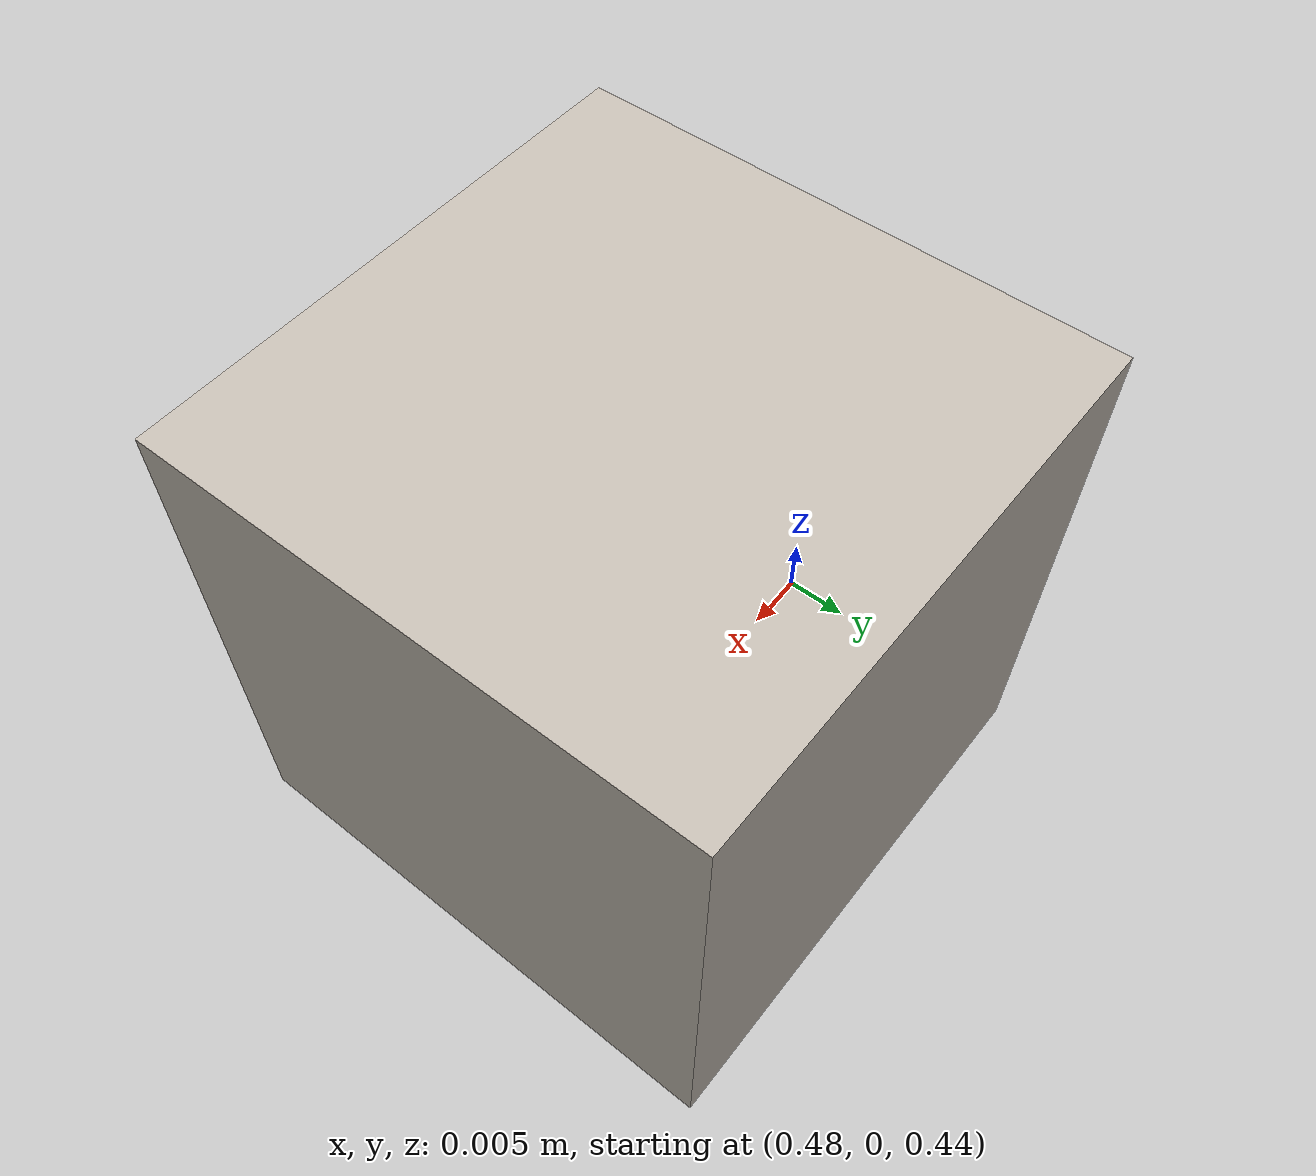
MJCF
<mujoco>
    <asset>
        <texture name="block2_texture" type="2d" file="textures/box.png" />
        <material name="block2_material" texture="block2_texture" />
    </asset>

    <worldbody>
        <body name="block2" pos="0.5 0.0 0.46">
            <joint name="block2:joint" type="free" damping="0.1" />
            <geom name="block2" size="0.02 0.02 0.02" type="box" conaffinity="0" contype="0" group="1" density="0" material="block2_material" />
            <geom name="block2_collision" size="0.02 0.02 0.02" type="box" conaffinity="1" condim="4" contype="1" group="4" mass="0.03" material="block2_material" />
        </body>
    </worldbody>
</mujoco>
